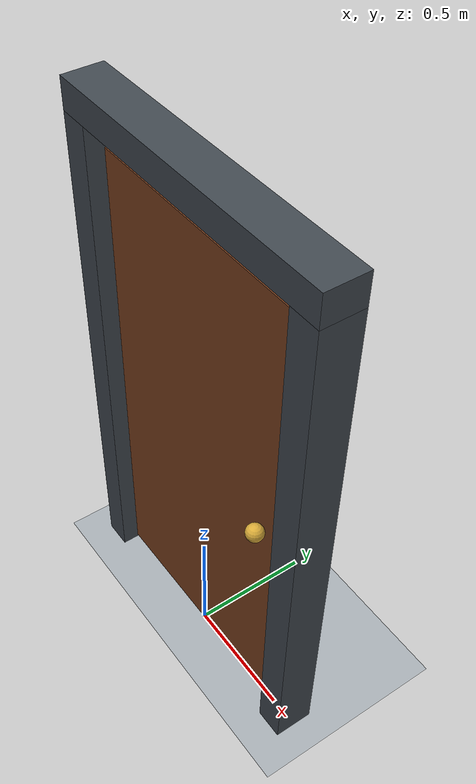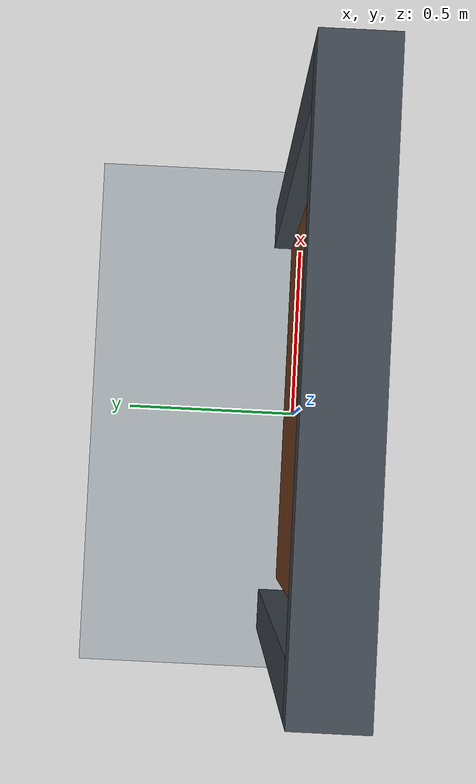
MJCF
<mujoco model="self_closing_door">
  <compiler angle="radian"/>
  <option timestep="0.002"/>

  <visual>
    <headlight ambient="0.4 0.4 0.4" diffuse="0.7 0.7 0.7" specular="0.2 0.2 0.2"/>
  </visual>

  <worldbody>
    <light name="overhead_light" pos="0 -2 4" dir="0 0.4 -1"/>
    <camera name="overview" pos="3 -4 2.8" xyaxes="0.8 0.6 0 -0.24 0.32 0.9165"/>

    <geom name="floor" type="plane" size="5 5 0.1" rgba="0.65 0.68 0.70 1"/>
    <geom name="left_jamb" type="box" pos="-0.60 0 1.07" size="0.06 0.08 1.07" rgba="0.25 0.28 0.31 1"/>
    <geom name="right_jamb" type="box" pos="0.57 0 1.07" size="0.06 0.08 1.07" rgba="0.25 0.28 0.31 1"/>
    <geom name="lintel" type="box" pos="-0.015 0 2.20" size="0.645 0.08 0.06" rgba="0.25 0.28 0.31 1"/>

    <!-- The left jamb clears the panel's swept thickness around the hinge. -->
    <!-- A passive spring closes the door; near-critical damping prevents rebound. -->
    <body name="door" pos="-0.5 0 0.07">
      <joint name="hinge" type="hinge" pos="0 0 0" axis="0 0 1" limited="true" range="0 1.65" stiffness="30" springref="0" damping="18.2" armature="0.02"/>
      <geom name="door_panel" type="box" pos="0.5 0 1" size="0.5 0.03 1" mass="8" rgba="0.48 0.25 0.12 1"/>
      <geom name="door_knob" type="sphere" pos="0.9 -0.065 1" size="0.035" mass="0.08" rgba="0.85 0.67 0.22 1"/>
    </body>
  </worldbody>

  <keyframe>
    <key name="start" qpos="1.25" qvel="0"/>
  </keyframe>
</mujoco>
